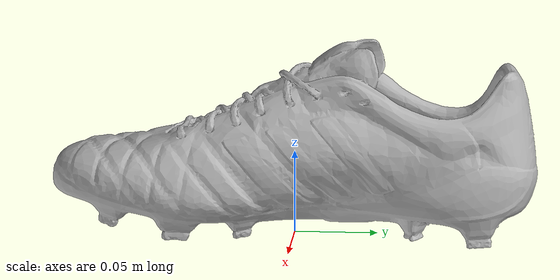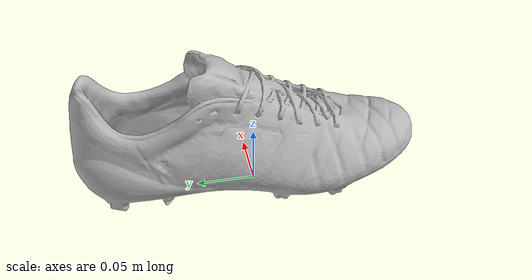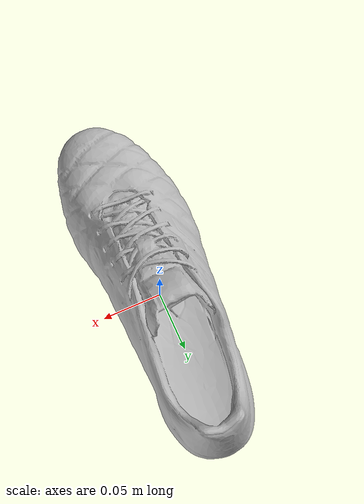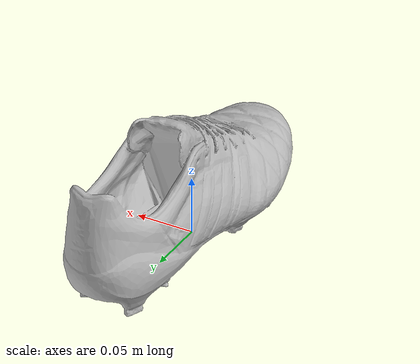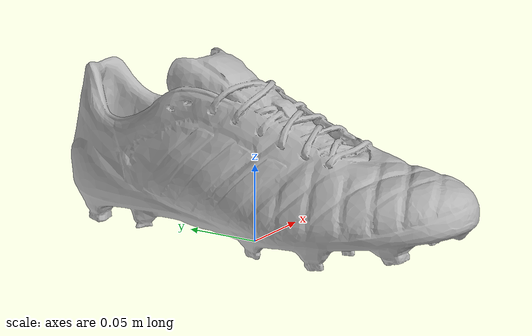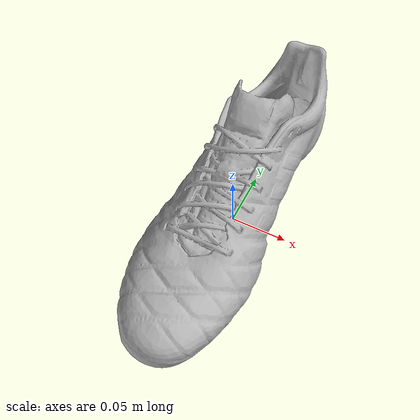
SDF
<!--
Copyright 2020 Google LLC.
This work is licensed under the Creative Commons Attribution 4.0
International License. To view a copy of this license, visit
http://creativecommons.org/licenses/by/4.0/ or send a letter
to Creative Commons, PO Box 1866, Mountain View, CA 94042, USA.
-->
<?xml version="1.0" ?>
<sdf version="1.6">
  <model name="Adrenaline_GTS_13_Color_WhtObsdianBlckOlmpcSlvr_Size_70">
    <link name="link_0">
      <visual name="visual">
        <geometry>
          <mesh>
            <uri>meshes/model.obj</uri>
          </mesh>
        </geometry>
      </visual>
      <collision name="collision_0">
        <geometry>
          <mesh>
            <uri>meshes/model.obj</uri>
          </mesh>
        </geometry>
      </collision>
    </link>
  </model>
</sdf>
